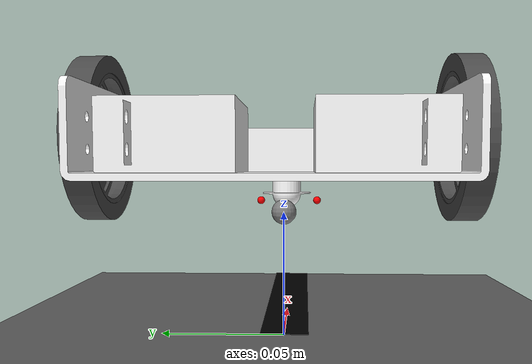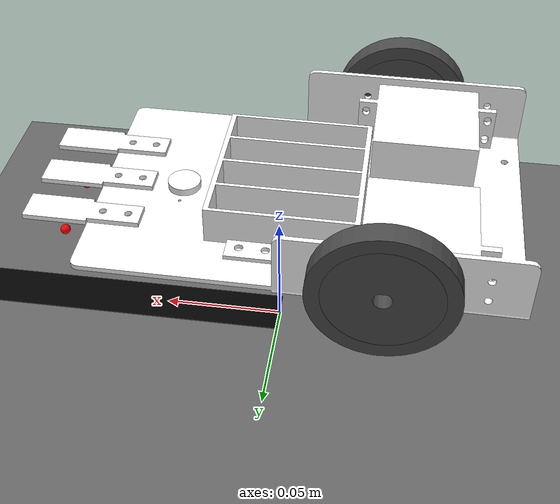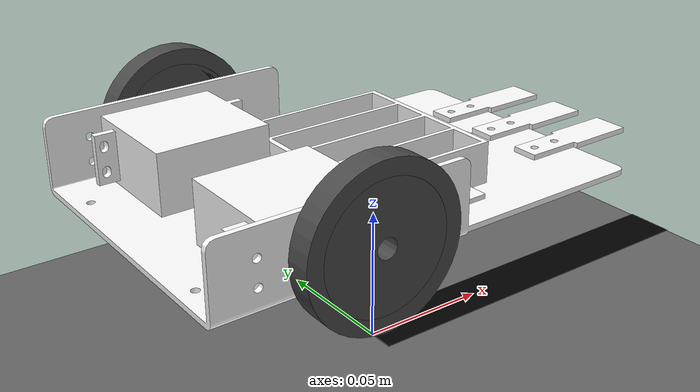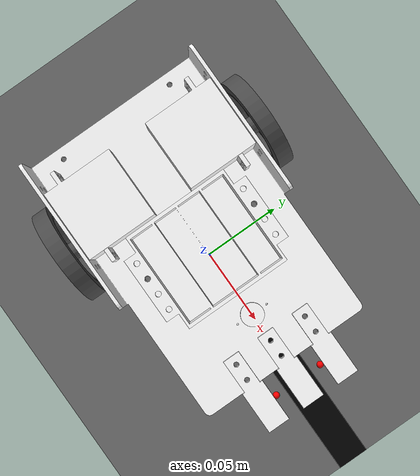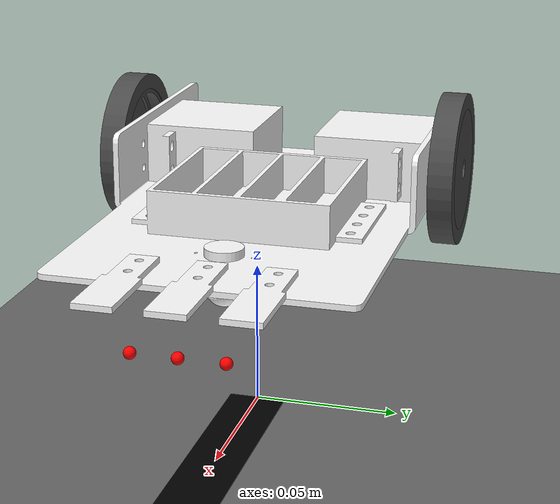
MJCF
<mujoco model="LineTracer">
  <default>
    <joint limited="true" damping="0.01" armature="0.01" frictionloss="0.01" />
    <geom condim="4" contype="1" conaffinity="15" friction="0.9 0.2 0.2" solref="0.02 1" />
    <motor ctrllimited="true" />
    <equality solref="0.001 2" />
    <default class="visualgeom">
      <geom material="visualgeom" condim="1" contype="0" conaffinity="0" />
    </default>
  </default>
  <option timestep="0.001" iterations="50" tolerance="1e-10" />
  <compiler angle="radian" meshdir="meshes/line_follower_robot" eulerseq="zyx" autolimits="true" />

  <asset>
    <texture name="texplane" type="2d" builtin="checker" rgb1=".0 .0 .0" rgb2=".8 .8 .8" width="100" height="100" />
    <material name="matplane" reflectance="0." texture="texplane" texrepeat="1 1" texuniform="true" />
    <material name="Body_material" rgba="1.000000 1.000000 1.000000 1.0" />
    <material name="LeftWheel_material" rgba="0.294118 0.294118 0.294118 1.0" />
    <material name="RightWheel_material" rgba="0.294118 0.294118 0.294118 1.0" />
    <material name="default_material" rgba="0.7 0.7 0.7 1" />
    <mesh name="line_follower_Body_vis_1.stl" file="line_follower_Body_vis_1.stl" />
    <mesh name="line_follower_Body_vis_2.stl" file="line_follower_Body_vis_2.stl" />
    <mesh name="line_follower_Body_vis_3.stl" file="line_follower_Body_vis_3.stl" />
    <mesh name="line_follower_Body_vis_4.stl" file="line_follower_Body_vis_4.stl" />
    <mesh name="line_follower_Body_vis_5.stl" file="line_follower_Body_vis_5.stl" />
    <mesh name="line_follower_Body_vis_6.stl" file="line_follower_Body_vis_6.stl" />
    <mesh name="line_follower_Body_vis_7.stl" file="line_follower_Body_vis_7.stl" />
    <mesh name="line_follower_Body_vis_8.stl" file="line_follower_Body_vis_8.stl" />
    <mesh name="line_follower_LeftWheel_vis_1.stl" file="line_follower_LeftWheel_vis_1.stl" />
    <mesh name="line_follower_LeftWheel_vis_2.stl" file="line_follower_LeftWheel_vis_2.stl" />
    <mesh name="line_follower_RightWheel_vis_1.stl" file="line_follower_RightWheel_vis_1.stl" />
    <mesh name="line_follower_RightWheel_vis_2.stl" file="line_follower_RightWheel_vis_2.stl" />
  </asset>

  <worldbody>
    <light directional="true" diffuse="0.4 0.4 0.4" specular="0.1 0.1 0.1" pos="0 0 5.0" dir="0 0 -1" castshadow="false" />
    <light directional="true" diffuse="0.6 0.6 0.6" specular="0.2 0.2 0.2" pos="0 0 4" dir="0 0 -1" />
    <geom name="ground" type="plane" pos="0 0 0" size="10 10 0.001" quat="1 0 0 0" material="matplane" condim="3" conaffinity="15" />
    <body name="root" pos="0 0 0.05020000013410966053" quat="1 0 0 0">
      <freejoint name="root" />
      <site name="root_site" pos="0 0 0" quat="1 0 0 0" />
      <body name="robot_base" pos="0 0 0" quat="1 0 0 0">

        <site name="sensor_mid" pos="0.085 0 0.001" size="0.002" rgba="1 0 0 1" />
        <site name="sensor_left" pos="0.085 0.015 0.001" size="0.002" rgba="1 0 0 1" />
        <site name="sensor_right" pos="0.085 -0.015 0.001" size="0.002" rgba="1 0 0 1" />

        <inertial pos="-0.024510 0.000000 0.022673" quat="0.7071068967259818 0.0 -0.7071066656470943 0.0" mass="0.20369647443295" diaginertia="0.00061051019147821 0.00040889239698183 0.00022408834383268" />
        <geom name="robot_base_collision_0" pos="-0.012391 -0.000000 0.015385" quat="0.999999999999955 -1.7320513330970195e-07 -1.7320507330968633e-07 -1.7320513330970195e-07" type="box" size="0.0825 0.0518615 0.0017" rgba="0 0 0 0" />
        <geom name="robot_base_collision_1" pos="-0.004961 -0.000000 0.023948" quat="0.999999999999955 -1.7320513330970195e-07 -1.7320507330968633e-07 -1.7320513330970195e-07" type="box" size="0.02895 0.0311 0.00775" rgba="0 0 0 0" />
        <geom name="robot_base_collision_2" pos="-0.055138 0.031675 0.026922" quat="0.999999999999955 -1.7320513330970195e-07 -1.7320507330968633e-07 -1.7320513330970195e-07" type="box" size="0.0205 0.02035 0.01105" rgba="0 0 0 0" />
        <geom name="robot_base_collision_3" pos="-0.055138 -0.031675 0.026922" quat="0.999999999999955 -1.7320513330970195e-07 -1.7320507330968633e-07 -1.7320513330970195e-07" type="box" size="0.0205 0.02035 0.01105" rgba="0 0 0 0" />
        <geom name="robot_base_collision_4" pos="0.084152 -0.022399 0.023800" quat="0.999999999999955 -1.7320513330970195e-07 -1.7320507330968633e-07 -1.7320513330970195e-07" type="box" size="0.0050445 0.0049985 0.004339" rgba="0 0 0 0" />
        <geom name="robot_base_collision_5" pos="0.084152 0.000030 0.023800" quat="0.999999999999955 -1.7320513330970195e-07 -1.7320507330968633e-07 -1.7320513330970195e-07" type="box" size="0.0050445 0.0049985 0.004339" rgba="0 0 0 0" />
        <geom name="robot_base_collision_6" pos="0.084152 0.022459 0.023800" quat="0.999999999999955 -1.7320513330970195e-07 -1.7320507330968633e-07 -1.7320513330970195e-07" type="box" size="0.0050445 0.0049985 0.004339" rgba="0 0 0 0" />
        <geom name="robot_base_collision_7" pos="0.072592 -0.022500 0.018108" quat="0.999999999999955 -1.7320513330970195e-07 -1.7320507330968633e-07 -1.7320513330970195e-07" type="box" size="0.0225 0.0065 0.0012" rgba="0 0 0 0" />
        <geom name="robot_base_collision_8" pos="0.072592 -0.000000 0.018108" quat="0.999999999999955 -1.7320513330970195e-07 -1.7320507330968633e-07 -1.7320513330970195e-07" type="box" size="0.0225 0.0065 0.0012" rgba="0 0 0 0" />
        <geom name="robot_base_collision_9" pos="0.072592 0.022500 0.018108" quat="0.999999999999955 -1.7320513330970195e-07 -1.7320507330968633e-07 -1.7320513330970195e-07" type="box" size="0.0225 0.0065 0.0012" rgba="0 0 0 0" />
        <geom name="robot_base_collision_10" pos="-0.049991 0.053000 0.028803" quat="0.999999999999955 -1.7320513330970195e-07 -1.7320507330968633e-07 -1.7320513330970195e-07" type="box" size="0.0451 0.001 0.0126" rgba="0 0 0 0" />
        <geom name="robot_base_collision_11" pos="-0.049991 -0.053000 0.028803" quat="0.999999999999955 -1.7320513330970195e-07 -1.7320507330968633e-07 -1.7320513330970195e-07" type="box" size="0.0451 0.001 0.0126" rgba="0 0 0 0" />
        <geom name="robot_base_visual_0" pos="0.000009 -0.000000 0.020614" quat="0.7071066656470945 -0.7071068967259395 -2.4494900617280295e-07 -4.002404256650263e-14" material="Body_material" type="mesh" mesh="line_follower_Body_vis_1.stl" />
        <geom name="robot_base_visual_1" pos="0.000009 -0.000000 0.020614" quat="0.7071066656470945 -0.7071068967259395 -2.4494900617280295e-07 -4.002404256650263e-14" material="Body_material" type="mesh" mesh="line_follower_Body_vis_2.stl" />
        <geom name="robot_base_visual_2" pos="0.000009 -0.000000 0.020614" quat="0.7071066656470945 -0.7071068967259395 -2.4494900617280295e-07 -4.002404256650263e-14" material="Body_material" type="mesh" mesh="line_follower_Body_vis_3.stl" />
        <geom name="robot_base_visual_3" pos="0.000009 -0.000000 0.020614" quat="0.7071066656470945 -0.7071068967259395 -2.4494900617280295e-07 -4.002404256650263e-14" material="Body_material" type="mesh" mesh="line_follower_Body_vis_4.stl" />
        <geom name="robot_base_visual_4" pos="0.000009 -0.000000 0.020614" quat="0.7071066656470945 -0.7071068967259395 -2.4494900617280295e-07 -4.002404256650263e-14" material="Body_material" type="mesh" mesh="line_follower_Body_vis_5.stl" />
        <geom name="robot_base_visual_5" pos="0.000009 -0.000000 0.020614" quat="0.7071066656470945 -0.7071068967259395 -2.4494900617280295e-07 -4.002404256650263e-14" material="Body_material" type="mesh" mesh="line_follower_Body_vis_6.stl" />
        <geom name="robot_base_visual_6" pos="0.000009 -0.000000 0.020614" quat="0.7071066656470945 -0.7071068967259395 -2.4494900617280295e-07 -4.002404256650263e-14" material="Body_material" type="mesh" mesh="line_follower_Body_vis_7.stl" />
        <geom name="robot_base_visual_7" pos="0.000009 -0.000000 0.020614" quat="0.7071066656470945 -0.7071068967259395 -2.4494900617280295e-07 -4.002404256650263e-14" material="Body_material" type="mesh" mesh="line_follower_Body_vis_8.stl" />
        <body name="DynamicLeftWheel" pos="-0.044216 0.058135 0.027000" quat="2.3107892515697132e-07 -2.3107884964157019e-07 0.7071068967259441 0.7071066656470566">
          <joint name="DynamicLeftJoint" type="hinge" axis="0 0 1" limited="false"/>
          <inertial pos="0.000013 -0.000039 0.001372" quat="3.000000781252362e-14 -0.99999999999997 -1.7320510330969674e-07 -1.7320510330969674e-07" mass="0.079999998211861" diaginertia="1.2476241810205e-05 1.2476241810205e-05 2.4108866175207e-05" />
          <geom name="DynamicLeftWheel_collision_0" pos="0.000013 -0.000039 0.001372" quat="3.000000781252362e-14 -0.99999999999997 -1.7320510330969674e-07 -1.7320510330969674e-07" type="cylinder" size="0.027000000700355 0.0043739997781813" rgba="0 0 0 0" />
          <body name="LeftWheel" pos="-0.000000 0.000000 -0.000000" quat="3.000000781252362e-14 1.7320510330969674e-07 -1.7320510330969674e-07 0.99999999999997">
            <geom name="LeftWheel_visual_0" pos="0.000013 -0.000039 -0.000128" quat="-0.630012796811708 -0.32106714683791043 0.6302220143462862 -0.3206555405854742" material="LeftWheel_material" type="mesh" mesh="line_follower_LeftWheel_vis_1.stl" />
            <geom name="LeftWheel_visual_1" pos="0.000013 -0.000039 -0.000128" quat="-0.630012796811708 -0.32106714683791043 0.6302220143462862 -0.3206555405854742" material="LeftWheel_material" type="mesh" mesh="line_follower_LeftWheel_vis_2.stl" />
          </body>
        </body>
        <body name="DynamicRightWheel" pos="-0.044261 -0.058136 0.027028" quat="2.3107892515697132e-07 -2.3107884964157019e-07 0.7071068967259441 0.7071066656470566">
          <joint name="DynamicRightJoint" type="hinge" axis="0 0 1" limited="false"/>
          <inertial pos="0.000058 -0.000013 -0.001372" quat="3.000000781252362e-14 -0.99999999999997 -1.7320510330969674e-07 -1.7320510330969674e-07" mass="0.079999998211861" diaginertia="1.2476241810205e-05 1.2476241810205e-05 2.4108866175207e-05" />
          <geom name="DynamicRightWheel_collision_0" pos="0.000058 -0.000013 -0.001372" quat="3.000000781252362e-14 -0.99999999999997 -1.7320510330969674e-07 -1.7320510330969674e-07" type="cylinder" size="0.027000000700355 0.0043739997781813" rgba="0 0 0 0" />
          <body name="RightWheel" pos="0.000000 0.000000 -0.000000" quat="3.000000781252362e-14 1.7320510330969674e-07 -1.7320510330969674e-07 0.99999999999997">
            <geom name="RightWheel_visual_0" pos="0.000058 -0.000013 0.000128" quat="-0.630012796811708 -0.32106714683791043 0.6302220143462862 -0.3206555405854742" material="RightWheel_material" type="mesh" mesh="line_follower_RightWheel_vis_1.stl" />
            <geom name="RightWheel_visual_1" pos="0.000058 -0.000013 0.000128" quat="-0.630012796811708 -0.32106714683791043 0.6302220143462862 -0.3206555405854742" material="RightWheel_material" type="mesh" mesh="line_follower_RightWheel_vis_2.stl" />
          </body>
        </body>
        <body name="DynamicSlider" pos="0.038209 0.000002 0.013300" quat="0.999999999999955 -1.7320513330970195e-07 -1.7320507330968633e-07 -1.7320513330970195e-07">
          <inertial pos="-0.000000 0.000000 -0.007000" quat="0.999999999999955 -1.7320513330970195e-07 -1.7320507330968633e-07 -1.7320513330970195e-07" mass="0.050000000745058" diaginertia="8.4666345296369e-07 8.4666345296369e-07 8.4666345296369e-07" />
          <geom name="DynamicSlider_collision_0" pos="-0.000000 0.000000 -0.007000" quat="0.999999999999955 -1.7320513330970195e-07 -1.7320507330968633e-07 -1.7320513330970195e-07" type="sphere" size="0.0065000001341105" rgba="0 0 0 0" />
        </body>
      </body>
    </body>
    <geom name="line_straight" type="box" pos="0.5 0 0.0001" size="0.5 0.01 0.0001" rgba="0 0 0 1" conaffinity="0" contype="0" />
  </worldbody>

  <actuator>
    <velocity name="Left_Velocity" joint="DynamicLeftJoint" kv="10" ctrlrange="-40 40" />
    <velocity name="Right_Velocity" joint="DynamicRightJoint" kv="10" ctrlrange="-40 40"/>
  </actuator>

  <sensor>
    <framepos name="base_link_pos" objtype="site" objname="root_site" />
    <framequat name="base_link_quat" objtype="site" objname="root_site" />
    <framelinvel name="base_link_vel" objtype="site" objname="root_site" />
    <frameangvel name="base_link_ang_vel" objtype="site" objname="root_site" />
  </sensor>
</mujoco>
